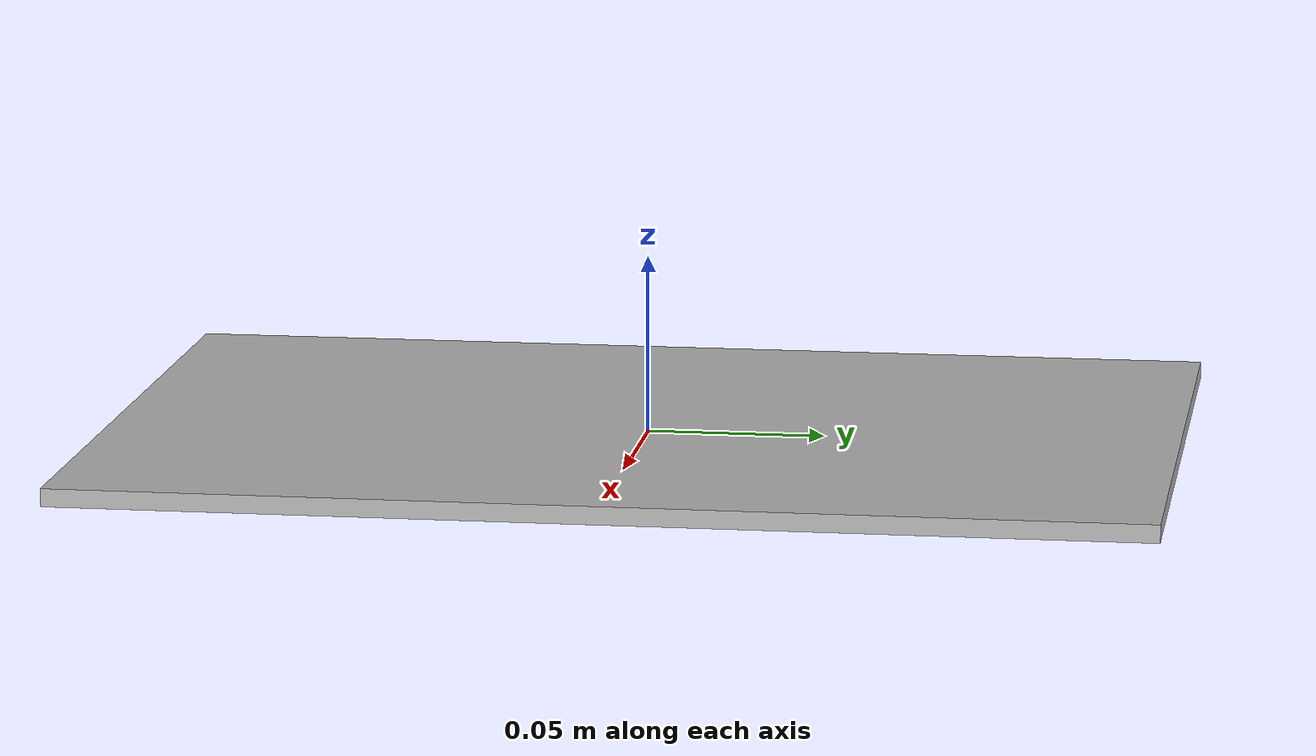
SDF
<?xml version="1.0" ?>
<sdf version="1.6">
  <model name="landing_pad">
    <static>true</static>
    <link name="link">
      <visual name="visual">
        <geometry>
          <mesh>
            <uri>model://landing_pad/meshes/landing_pad.dae</uri>
          <scale>1.0 1.0 1.0</scale></mesh>
        </geometry>
      </visual>
    </link>

  </model>
</sdf>
